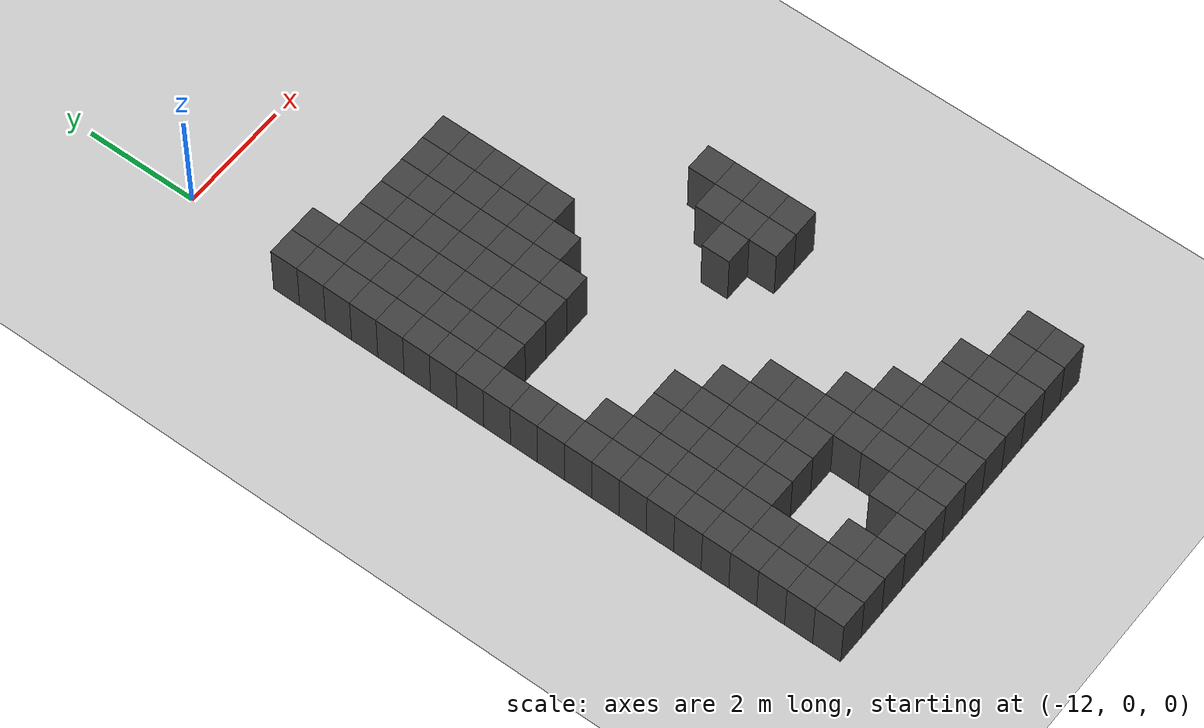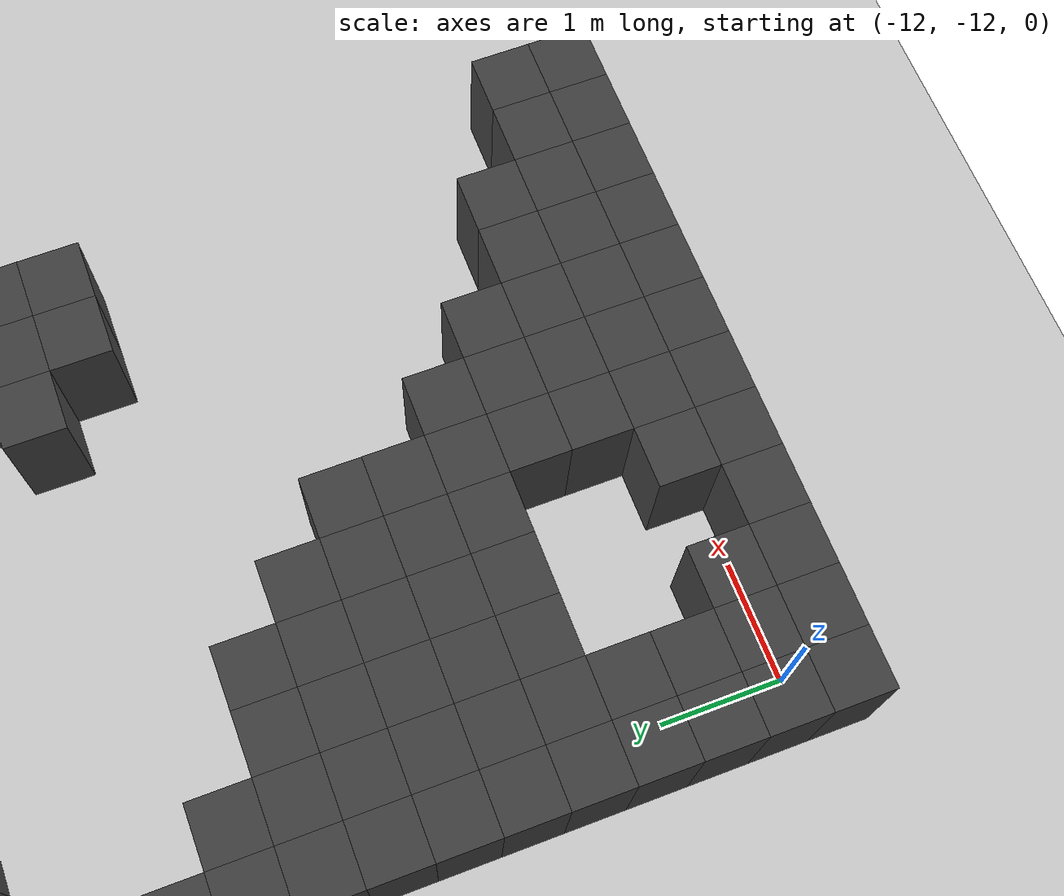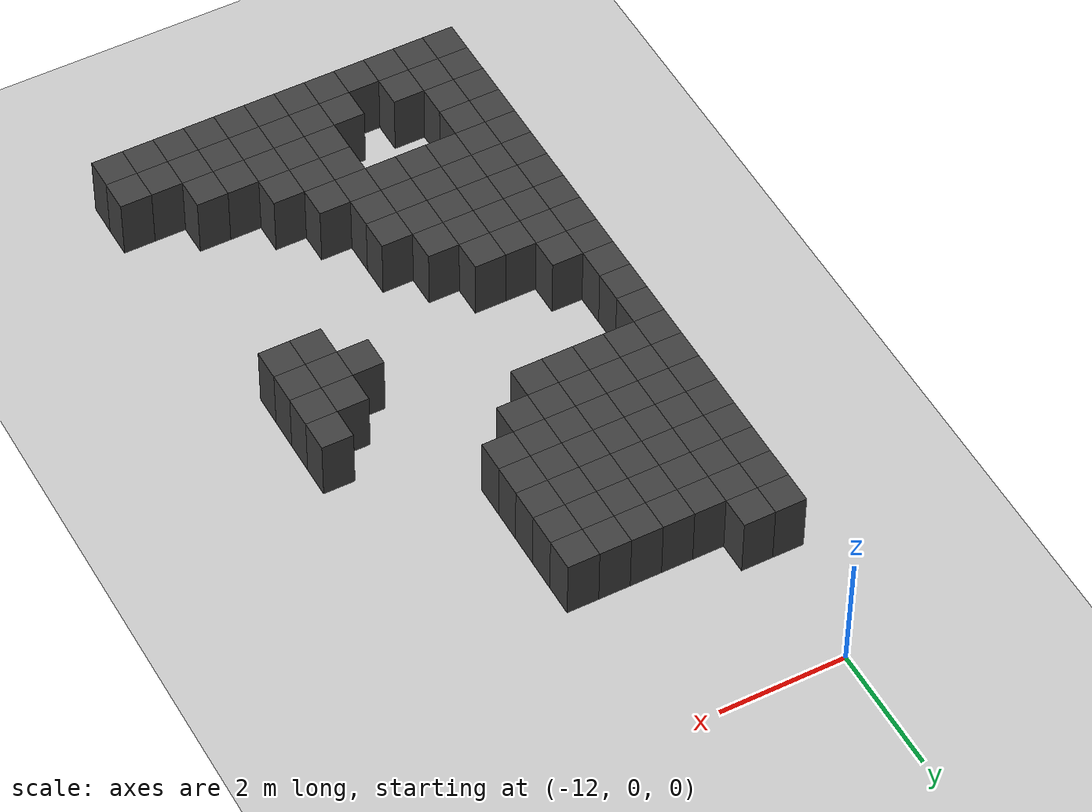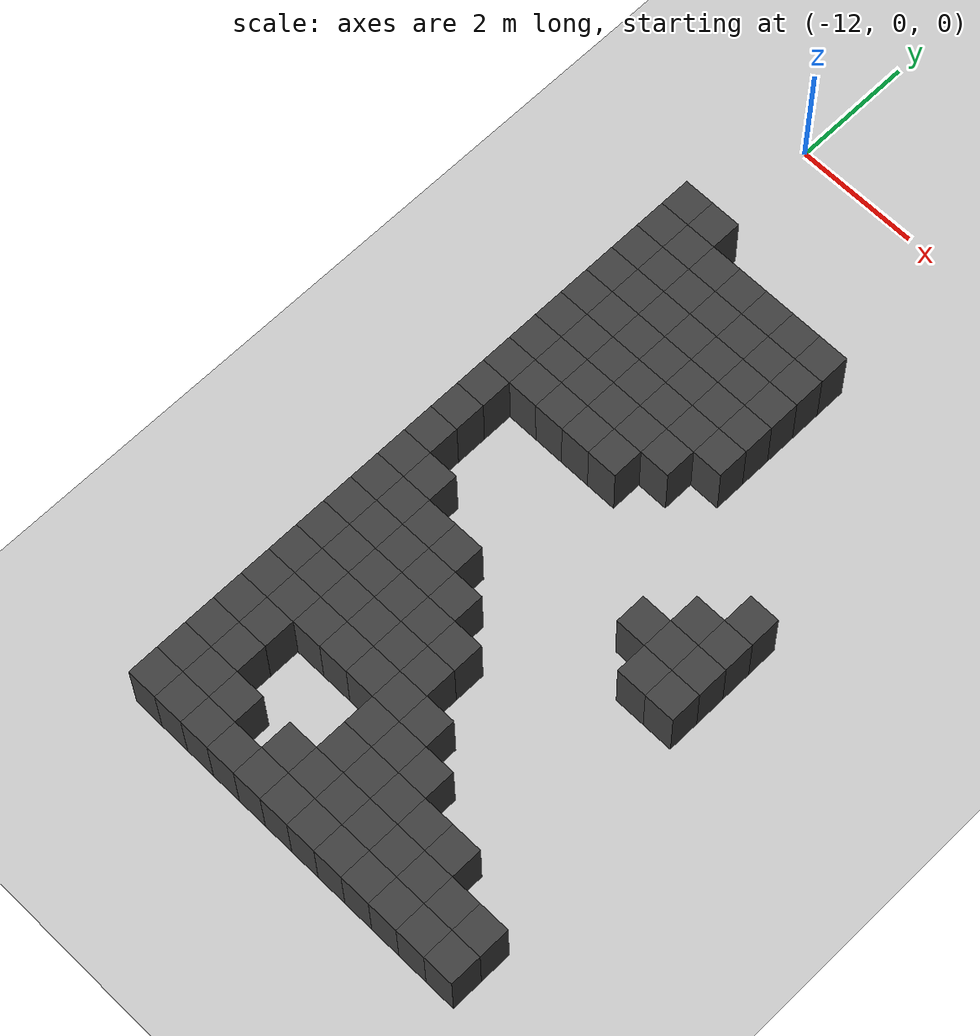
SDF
<sdf version="1.7">
 <world name="map_9687">
  <model name="ground_plane">
   <static>true</static>
   <link name="link">
    <collision name="collision">
     <geometry><plane><normal>0 0 1</normal><size>200 200</size></plane></geometry>
    </collision>
    <visual name="visual">
     <geometry><plane><normal>0 0 1</normal><size>200 200</size></plane></geometry>
     <material><ambient>0.8 0.8 0.8 1</ambient><diffuse>0.8 0.8 0.8 1</diffuse></material>
    </visual>
   </link>
  </model>
  <model name="maze_environment">
   <static>true</static>
   <link name="wall_546">
    <pose>-12.250 -2.250 0.500 0 0 0</pose>
    <collision name="col"><geometry><box><size>0.5 0.5 1.0</size></box></geometry></collision>
    <visual name="vis">
     <geometry><box><size>0.5 0.5 1.0</size></box></geometry>
     <material><ambient>0.15 0.15 0.15 1</ambient><diffuse>0.25 0.25 0.25 1</diffuse></material>
    </visual>
   </link>
   <link name="wall_547">
    <pose>-11.750 -2.250 0.500 0 0 0</pose>
    <collision name="col"><geometry><box><size>0.5 0.5 1.0</size></box></geometry></collision>
    <visual name="vis">
     <geometry><box><size>0.5 0.5 1.0</size></box></geometry>
     <material><ambient>0.15 0.15 0.15 1</ambient><diffuse>0.25 0.25 0.25 1</diffuse></material>
    </visual>
   </link>
   <link name="wall_574">
    <pose>-12.250 -2.750 0.500 0 0 0</pose>
    <collision name="col"><geometry><box><size>0.5 0.5 1.0</size></box></geometry></collision>
    <visual name="vis">
     <geometry><box><size>0.5 0.5 1.0</size></box></geometry>
     <material><ambient>0.15 0.15 0.15 1</ambient><diffuse>0.25 0.25 0.25 1</diffuse></material>
    </visual>
   </link>
   <link name="wall_575">
    <pose>-11.750 -2.750 0.500 0 0 0</pose>
    <collision name="col"><geometry><box><size>0.5 0.5 1.0</size></box></geometry></collision>
    <visual name="vis">
     <geometry><box><size>0.5 0.5 1.0</size></box></geometry>
     <material><ambient>0.15 0.15 0.15 1</ambient><diffuse>0.25 0.25 0.25 1</diffuse></material>
    </visual>
   </link>
   <link name="wall_576">
    <pose>-11.250 -2.750 0.500 0 0 0</pose>
    <collision name="col"><geometry><box><size>0.5 0.5 1.0</size></box></geometry></collision>
    <visual name="vis">
     <geometry><box><size>0.5 0.5 1.0</size></box></geometry>
     <material><ambient>0.15 0.15 0.15 1</ambient><diffuse>0.25 0.25 0.25 1</diffuse></material>
    </visual>
   </link>
   <link name="wall_577">
    <pose>-10.750 -2.750 0.500 0 0 0</pose>
    <collision name="col"><geometry><box><size>0.5 0.5 1.0</size></box></geometry></collision>
    <visual name="vis">
     <geometry><box><size>0.5 0.5 1.0</size></box></geometry>
     <material><ambient>0.15 0.15 0.15 1</ambient><diffuse>0.25 0.25 0.25 1</diffuse></material>
    </visual>
   </link>
   <link name="wall_578">
    <pose>-10.250 -2.750 0.500 0 0 0</pose>
    <collision name="col"><geometry><box><size>0.5 0.5 1.0</size></box></geometry></collision>
    <visual name="vis">
     <geometry><box><size>0.5 0.5 1.0</size></box></geometry>
     <material><ambient>0.15 0.15 0.15 1</ambient><diffuse>0.25 0.25 0.25 1</diffuse></material>
    </visual>
   </link>
   <link name="wall_579">
    <pose>-9.750 -2.750 0.500 0 0 0</pose>
    <collision name="col"><geometry><box><size>0.5 0.5 1.0</size></box></geometry></collision>
    <visual name="vis">
     <geometry><box><size>0.5 0.5 1.0</size></box></geometry>
     <material><ambient>0.15 0.15 0.15 1</ambient><diffuse>0.25 0.25 0.25 1</diffuse></material>
    </visual>
   </link>
   <link name="wall_580">
    <pose>-9.250 -2.750 0.500 0 0 0</pose>
    <collision name="col"><geometry><box><size>0.5 0.5 1.0</size></box></geometry></collision>
    <visual name="vis">
     <geometry><box><size>0.5 0.5 1.0</size></box></geometry>
     <material><ambient>0.15 0.15 0.15 1</ambient><diffuse>0.25 0.25 0.25 1</diffuse></material>
    </visual>
   </link>
   <link name="wall_602">
    <pose>-12.250 -3.250 0.500 0 0 0</pose>
    <collision name="col"><geometry><box><size>0.5 0.5 1.0</size></box></geometry></collision>
    <visual name="vis">
     <geometry><box><size>0.5 0.5 1.0</size></box></geometry>
     <material><ambient>0.15 0.15 0.15 1</ambient><diffuse>0.25 0.25 0.25 1</diffuse></material>
    </visual>
   </link>
   <link name="wall_603">
    <pose>-11.750 -3.250 0.500 0 0 0</pose>
    <collision name="col"><geometry><box><size>0.5 0.5 1.0</size></box></geometry></collision>
    <visual name="vis">
     <geometry><box><size>0.5 0.5 1.0</size></box></geometry>
     <material><ambient>0.15 0.15 0.15 1</ambient><diffuse>0.25 0.25 0.25 1</diffuse></material>
    </visual>
   </link>
   <link name="wall_604">
    <pose>-11.250 -3.250 0.500 0 0 0</pose>
    <collision name="col"><geometry><box><size>0.5 0.5 1.0</size></box></geometry></collision>
    <visual name="vis">
     <geometry><box><size>0.5 0.5 1.0</size></box></geometry>
     <material><ambient>0.15 0.15 0.15 1</ambient><diffuse>0.25 0.25 0.25 1</diffuse></material>
    </visual>
   </link>
   <link name="wall_605">
    <pose>-10.750 -3.250 0.500 0 0 0</pose>
    <collision name="col"><geometry><box><size>0.5 0.5 1.0</size></box></geometry></collision>
    <visual name="vis">
     <geometry><box><size>0.5 0.5 1.0</size></box></geometry>
     <material><ambient>0.15 0.15 0.15 1</ambient><diffuse>0.25 0.25 0.25 1</diffuse></material>
    </visual>
   </link>
   <link name="wall_606">
    <pose>-10.250 -3.250 0.500 0 0 0</pose>
    <collision name="col"><geometry><box><size>0.5 0.5 1.0</size></box></geometry></collision>
    <visual name="vis">
     <geometry><box><size>0.5 0.5 1.0</size></box></geometry>
     <material><ambient>0.15 0.15 0.15 1</ambient><diffuse>0.25 0.25 0.25 1</diffuse></material>
    </visual>
   </link>
   <link name="wall_607">
    <pose>-9.750 -3.250 0.500 0 0 0</pose>
    <collision name="col"><geometry><box><size>0.5 0.5 1.0</size></box></geometry></collision>
    <visual name="vis">
     <geometry><box><size>0.5 0.5 1.0</size></box></geometry>
     <material><ambient>0.15 0.15 0.15 1</ambient><diffuse>0.25 0.25 0.25 1</diffuse></material>
    </visual>
   </link>
   <link name="wall_608">
    <pose>-9.250 -3.250 0.500 0 0 0</pose>
    <collision name="col"><geometry><box><size>0.5 0.5 1.0</size></box></geometry></collision>
    <visual name="vis">
     <geometry><box><size>0.5 0.5 1.0</size></box></geometry>
     <material><ambient>0.15 0.15 0.15 1</ambient><diffuse>0.25 0.25 0.25 1</diffuse></material>
    </visual>
   </link>
   <link name="wall_630">
    <pose>-12.250 -3.750 0.500 0 0 0</pose>
    <collision name="col"><geometry><box><size>0.5 0.5 1.0</size></box></geometry></collision>
    <visual name="vis">
     <geometry><box><size>0.5 0.5 1.0</size></box></geometry>
     <material><ambient>0.15 0.15 0.15 1</ambient><diffuse>0.25 0.25 0.25 1</diffuse></material>
    </visual>
   </link>
   <link name="wall_631">
    <pose>-11.750 -3.750 0.500 0 0 0</pose>
    <collision name="col"><geometry><box><size>0.5 0.5 1.0</size></box></geometry></collision>
    <visual name="vis">
     <geometry><box><size>0.5 0.5 1.0</size></box></geometry>
     <material><ambient>0.15 0.15 0.15 1</ambient><diffuse>0.25 0.25 0.25 1</diffuse></material>
    </visual>
   </link>
   <link name="wall_632">
    <pose>-11.250 -3.750 0.500 0 0 0</pose>
    <collision name="col"><geometry><box><size>0.5 0.5 1.0</size></box></geometry></collision>
    <visual name="vis">
     <geometry><box><size>0.5 0.5 1.0</size></box></geometry>
     <material><ambient>0.15 0.15 0.15 1</ambient><diffuse>0.25 0.25 0.25 1</diffuse></material>
    </visual>
   </link>
   <link name="wall_633">
    <pose>-10.750 -3.750 0.500 0 0 0</pose>
    <collision name="col"><geometry><box><size>0.5 0.5 1.0</size></box></geometry></collision>
    <visual name="vis">
     <geometry><box><size>0.5 0.5 1.0</size></box></geometry>
     <material><ambient>0.15 0.15 0.15 1</ambient><diffuse>0.25 0.25 0.25 1</diffuse></material>
    </visual>
   </link>
   <link name="wall_634">
    <pose>-10.250 -3.750 0.500 0 0 0</pose>
    <collision name="col"><geometry><box><size>0.5 0.5 1.0</size></box></geometry></collision>
    <visual name="vis">
     <geometry><box><size>0.5 0.5 1.0</size></box></geometry>
     <material><ambient>0.15 0.15 0.15 1</ambient><diffuse>0.25 0.25 0.25 1</diffuse></material>
    </visual>
   </link>
   <link name="wall_635">
    <pose>-9.750 -3.750 0.500 0 0 0</pose>
    <collision name="col"><geometry><box><size>0.5 0.5 1.0</size></box></geometry></collision>
    <visual name="vis">
     <geometry><box><size>0.5 0.5 1.0</size></box></geometry>
     <material><ambient>0.15 0.15 0.15 1</ambient><diffuse>0.25 0.25 0.25 1</diffuse></material>
    </visual>
   </link>
   <link name="wall_636">
    <pose>-9.250 -3.750 0.500 0 0 0</pose>
    <collision name="col"><geometry><box><size>0.5 0.5 1.0</size></box></geometry></collision>
    <visual name="vis">
     <geometry><box><size>0.5 0.5 1.0</size></box></geometry>
     <material><ambient>0.15 0.15 0.15 1</ambient><diffuse>0.25 0.25 0.25 1</diffuse></material>
    </visual>
   </link>
   <link name="wall_659">
    <pose>-12.250 -4.250 0.500 0 0 0</pose>
    <collision name="col"><geometry><box><size>0.5 0.5 1.0</size></box></geometry></collision>
    <visual name="vis">
     <geometry><box><size>0.5 0.5 1.0</size></box></geometry>
     <material><ambient>0.15 0.15 0.15 1</ambient><diffuse>0.25 0.25 0.25 1</diffuse></material>
    </visual>
   </link>
   <link name="wall_660">
    <pose>-11.750 -4.250 0.500 0 0 0</pose>
    <collision name="col"><geometry><box><size>0.5 0.5 1.0</size></box></geometry></collision>
    <visual name="vis">
     <geometry><box><size>0.5 0.5 1.0</size></box></geometry>
     <material><ambient>0.15 0.15 0.15 1</ambient><diffuse>0.25 0.25 0.25 1</diffuse></material>
    </visual>
   </link>
   <link name="wall_661">
    <pose>-11.250 -4.250 0.500 0 0 0</pose>
    <collision name="col"><geometry><box><size>0.5 0.5 1.0</size></box></geometry></collision>
    <visual name="vis">
     <geometry><box><size>0.5 0.5 1.0</size></box></geometry>
     <material><ambient>0.15 0.15 0.15 1</ambient><diffuse>0.25 0.25 0.25 1</diffuse></material>
    </visual>
   </link>
   <link name="wall_662">
    <pose>-10.750 -4.250 0.500 0 0 0</pose>
    <collision name="col"><geometry><box><size>0.5 0.5 1.0</size></box></geometry></collision>
    <visual name="vis">
     <geometry><box><size>0.5 0.5 1.0</size></box></geometry>
     <material><ambient>0.15 0.15 0.15 1</ambient><diffuse>0.25 0.25 0.25 1</diffuse></material>
    </visual>
   </link>
   <link name="wall_663">
    <pose>-10.250 -4.250 0.500 0 0 0</pose>
    <collision name="col"><geometry><box><size>0.5 0.5 1.0</size></box></geometry></collision>
    <visual name="vis">
     <geometry><box><size>0.5 0.5 1.0</size></box></geometry>
     <material><ambient>0.15 0.15 0.15 1</ambient><diffuse>0.25 0.25 0.25 1</diffuse></material>
    </visual>
   </link>
   <link name="wall_664">
    <pose>-9.750 -4.250 0.500 0 0 0</pose>
    <collision name="col"><geometry><box><size>0.5 0.5 1.0</size></box></geometry></collision>
    <visual name="vis">
     <geometry><box><size>0.5 0.5 1.0</size></box></geometry>
     <material><ambient>0.15 0.15 0.15 1</ambient><diffuse>0.25 0.25 0.25 1</diffuse></material>
    </visual>
   </link>
   <link name="wall_665">
    <pose>-9.250 -4.250 0.500 0 0 0</pose>
    <collision name="col"><geometry><box><size>0.5 0.5 1.0</size></box></geometry></collision>
    <visual name="vis">
     <geometry><box><size>0.5 0.5 1.0</size></box></geometry>
     <material><ambient>0.15 0.15 0.15 1</ambient><diffuse>0.25 0.25 0.25 1</diffuse></material>
    </visual>
   </link>
   <link name="wall_685">
    <pose>-12.250 -4.750 0.500 0 0 0</pose>
    <collision name="col"><geometry><box><size>0.5 0.5 1.0</size></box></geometry></collision>
    <visual name="vis">
     <geometry><box><size>0.5 0.5 1.0</size></box></geometry>
     <material><ambient>0.15 0.15 0.15 1</ambient><diffuse>0.25 0.25 0.25 1</diffuse></material>
    </visual>
   </link>
   <link name="wall_686">
    <pose>-11.750 -4.750 0.500 0 0 0</pose>
    <collision name="col"><geometry><box><size>0.5 0.5 1.0</size></box></geometry></collision>
    <visual name="vis">
     <geometry><box><size>0.5 0.5 1.0</size></box></geometry>
     <material><ambient>0.15 0.15 0.15 1</ambient><diffuse>0.25 0.25 0.25 1</diffuse></material>
    </visual>
   </link>
   <link name="wall_687">
    <pose>-11.250 -4.750 0.500 0 0 0</pose>
    <collision name="col"><geometry><box><size>0.5 0.5 1.0</size></box></geometry></collision>
    <visual name="vis">
     <geometry><box><size>0.5 0.5 1.0</size></box></geometry>
     <material><ambient>0.15 0.15 0.15 1</ambient><diffuse>0.25 0.25 0.25 1</diffuse></material>
    </visual>
   </link>
   <link name="wall_688">
    <pose>-10.750 -4.750 0.500 0 0 0</pose>
    <collision name="col"><geometry><box><size>0.5 0.5 1.0</size></box></geometry></collision>
    <visual name="vis">
     <geometry><box><size>0.5 0.5 1.0</size></box></geometry>
     <material><ambient>0.15 0.15 0.15 1</ambient><diffuse>0.25 0.25 0.25 1</diffuse></material>
    </visual>
   </link>
   <link name="wall_689">
    <pose>-10.250 -4.750 0.500 0 0 0</pose>
    <collision name="col"><geometry><box><size>0.5 0.5 1.0</size></box></geometry></collision>
    <visual name="vis">
     <geometry><box><size>0.5 0.5 1.0</size></box></geometry>
     <material><ambient>0.15 0.15 0.15 1</ambient><diffuse>0.25 0.25 0.25 1</diffuse></material>
    </visual>
   </link>
   <link name="wall_690">
    <pose>-9.750 -4.750 0.500 0 0 0</pose>
    <collision name="col"><geometry><box><size>0.5 0.5 1.0</size></box></geometry></collision>
    <visual name="vis">
     <geometry><box><size>0.5 0.5 1.0</size></box></geometry>
     <material><ambient>0.15 0.15 0.15 1</ambient><diffuse>0.25 0.25 0.25 1</diffuse></material>
    </visual>
   </link>
   <link name="wall_691">
    <pose>-9.250 -4.750 0.500 0 0 0</pose>
    <collision name="col"><geometry><box><size>0.5 0.5 1.0</size></box></geometry></collision>
    <visual name="vis">
     <geometry><box><size>0.5 0.5 1.0</size></box></geometry>
     <material><ambient>0.15 0.15 0.15 1</ambient><diffuse>0.25 0.25 0.25 1</diffuse></material>
    </visual>
   </link>
   <link name="wall_709">
    <pose>-12.250 -5.250 0.500 0 0 0</pose>
    <collision name="col"><geometry><box><size>0.5 0.5 1.0</size></box></geometry></collision>
    <visual name="vis">
     <geometry><box><size>0.5 0.5 1.0</size></box></geometry>
     <material><ambient>0.15 0.15 0.15 1</ambient><diffuse>0.25 0.25 0.25 1</diffuse></material>
    </visual>
   </link>
   <link name="wall_710">
    <pose>-11.750 -5.250 0.500 0 0 0</pose>
    <collision name="col"><geometry><box><size>0.5 0.5 1.0</size></box></geometry></collision>
    <visual name="vis">
     <geometry><box><size>0.5 0.5 1.0</size></box></geometry>
     <material><ambient>0.15 0.15 0.15 1</ambient><diffuse>0.25 0.25 0.25 1</diffuse></material>
    </visual>
   </link>
   <link name="wall_711">
    <pose>-11.250 -5.250 0.500 0 0 0</pose>
    <collision name="col"><geometry><box><size>0.5 0.5 1.0</size></box></geometry></collision>
    <visual name="vis">
     <geometry><box><size>0.5 0.5 1.0</size></box></geometry>
     <material><ambient>0.15 0.15 0.15 1</ambient><diffuse>0.25 0.25 0.25 1</diffuse></material>
    </visual>
   </link>
   <link name="wall_712">
    <pose>-10.750 -5.250 0.500 0 0 0</pose>
    <collision name="col"><geometry><box><size>0.5 0.5 1.0</size></box></geometry></collision>
    <visual name="vis">
     <geometry><box><size>0.5 0.5 1.0</size></box></geometry>
     <material><ambient>0.15 0.15 0.15 1</ambient><diffuse>0.25 0.25 0.25 1</diffuse></material>
    </visual>
   </link>
   <link name="wall_713">
    <pose>-10.250 -5.250 0.500 0 0 0</pose>
    <collision name="col"><geometry><box><size>0.5 0.5 1.0</size></box></geometry></collision>
    <visual name="vis">
     <geometry><box><size>0.5 0.5 1.0</size></box></geometry>
     <material><ambient>0.15 0.15 0.15 1</ambient><diffuse>0.25 0.25 0.25 1</diffuse></material>
    </visual>
   </link>
   <link name="wall_714">
    <pose>-9.750 -5.250 0.500 0 0 0</pose>
    <collision name="col"><geometry><box><size>0.5 0.5 1.0</size></box></geometry></collision>
    <visual name="vis">
     <geometry><box><size>0.5 0.5 1.0</size></box></geometry>
     <material><ambient>0.15 0.15 0.15 1</ambient><diffuse>0.25 0.25 0.25 1</diffuse></material>
    </visual>
   </link>
   <link name="wall_730">
    <pose>-12.250 -5.750 0.500 0 0 0</pose>
    <collision name="col"><geometry><box><size>0.5 0.5 1.0</size></box></geometry></collision>
    <visual name="vis">
     <geometry><box><size>0.5 0.5 1.0</size></box></geometry>
     <material><ambient>0.15 0.15 0.15 1</ambient><diffuse>0.25 0.25 0.25 1</diffuse></material>
    </visual>
   </link>
   <link name="wall_731">
    <pose>-11.750 -5.750 0.500 0 0 0</pose>
    <collision name="col"><geometry><box><size>0.5 0.5 1.0</size></box></geometry></collision>
    <visual name="vis">
     <geometry><box><size>0.5 0.5 1.0</size></box></geometry>
     <material><ambient>0.15 0.15 0.15 1</ambient><diffuse>0.25 0.25 0.25 1</diffuse></material>
    </visual>
   </link>
   <link name="wall_732">
    <pose>-11.250 -5.750 0.500 0 0 0</pose>
    <collision name="col"><geometry><box><size>0.5 0.5 1.0</size></box></geometry></collision>
    <visual name="vis">
     <geometry><box><size>0.5 0.5 1.0</size></box></geometry>
     <material><ambient>0.15 0.15 0.15 1</ambient><diffuse>0.25 0.25 0.25 1</diffuse></material>
    </visual>
   </link>
   <link name="wall_733">
    <pose>-10.750 -5.750 0.500 0 0 0</pose>
    <collision name="col"><geometry><box><size>0.5 0.5 1.0</size></box></geometry></collision>
    <visual name="vis">
     <geometry><box><size>0.5 0.5 1.0</size></box></geometry>
     <material><ambient>0.15 0.15 0.15 1</ambient><diffuse>0.25 0.25 0.25 1</diffuse></material>
    </visual>
   </link>
   <link name="wall_734">
    <pose>-10.250 -5.750 0.500 0 0 0</pose>
    <collision name="col"><geometry><box><size>0.5 0.5 1.0</size></box></geometry></collision>
    <visual name="vis">
     <geometry><box><size>0.5 0.5 1.0</size></box></geometry>
     <material><ambient>0.15 0.15 0.15 1</ambient><diffuse>0.25 0.25 0.25 1</diffuse></material>
    </visual>
   </link>
   <link name="wall_748">
    <pose>-12.250 -6.250 0.500 0 0 0</pose>
    <collision name="col"><geometry><box><size>0.5 0.5 1.0</size></box></geometry></collision>
    <visual name="vis">
     <geometry><box><size>0.5 0.5 1.0</size></box></geometry>
     <material><ambient>0.15 0.15 0.15 1</ambient><diffuse>0.25 0.25 0.25 1</diffuse></material>
    </visual>
   </link>
   <link name="wall_749">
    <pose>-7.250 -6.250 0.500 0 0 0</pose>
    <collision name="col"><geometry><box><size>0.5 0.5 1.0</size></box></geometry></collision>
    <visual name="vis">
     <geometry><box><size>0.5 0.5 1.0</size></box></geometry>
     <material><ambient>0.15 0.15 0.15 1</ambient><diffuse>0.25 0.25 0.25 1</diffuse></material>
    </visual>
   </link>
   <link name="wall_761">
    <pose>-12.250 -6.750 0.500 0 0 0</pose>
    <collision name="col"><geometry><box><size>0.5 0.5 1.0</size></box></geometry></collision>
    <visual name="vis">
     <geometry><box><size>0.5 0.5 1.0</size></box></geometry>
     <material><ambient>0.15 0.15 0.15 1</ambient><diffuse>0.25 0.25 0.25 1</diffuse></material>
    </visual>
   </link>
   <link name="wall_762">
    <pose>-7.750 -6.750 0.500 0 0 0</pose>
    <collision name="col"><geometry><box><size>0.5 0.5 1.0</size></box></geometry></collision>
    <visual name="vis">
     <geometry><box><size>0.5 0.5 1.0</size></box></geometry>
     <material><ambient>0.15 0.15 0.15 1</ambient><diffuse>0.25 0.25 0.25 1</diffuse></material>
    </visual>
   </link>
   <link name="wall_763">
    <pose>-7.250 -6.750 0.500 0 0 0</pose>
    <collision name="col"><geometry><box><size>0.5 0.5 1.0</size></box></geometry></collision>
    <visual name="vis">
     <geometry><box><size>0.5 0.5 1.0</size></box></geometry>
     <material><ambient>0.15 0.15 0.15 1</ambient><diffuse>0.25 0.25 0.25 1</diffuse></material>
    </visual>
   </link>
   <link name="wall_775">
    <pose>-12.250 -7.250 0.500 0 0 0</pose>
    <collision name="col"><geometry><box><size>0.5 0.5 1.0</size></box></geometry></collision>
    <visual name="vis">
     <geometry><box><size>0.5 0.5 1.0</size></box></geometry>
     <material><ambient>0.15 0.15 0.15 1</ambient><diffuse>0.25 0.25 0.25 1</diffuse></material>
    </visual>
   </link>
   <link name="wall_776">
    <pose>-8.250 -7.250 0.500 0 0 0</pose>
    <collision name="col"><geometry><box><size>0.5 0.5 1.0</size></box></geometry></collision>
    <visual name="vis">
     <geometry><box><size>0.5 0.5 1.0</size></box></geometry>
     <material><ambient>0.15 0.15 0.15 1</ambient><diffuse>0.25 0.25 0.25 1</diffuse></material>
    </visual>
   </link>
   <link name="wall_777">
    <pose>-7.750 -7.250 0.500 0 0 0</pose>
    <collision name="col"><geometry><box><size>0.5 0.5 1.0</size></box></geometry></collision>
    <visual name="vis">
     <geometry><box><size>0.5 0.5 1.0</size></box></geometry>
     <material><ambient>0.15 0.15 0.15 1</ambient><diffuse>0.25 0.25 0.25 1</diffuse></material>
    </visual>
   </link>
   <link name="wall_778">
    <pose>-7.250 -7.250 0.500 0 0 0</pose>
    <collision name="col"><geometry><box><size>0.5 0.5 1.0</size></box></geometry></collision>
    <visual name="vis">
     <geometry><box><size>0.5 0.5 1.0</size></box></geometry>
     <material><ambient>0.15 0.15 0.15 1</ambient><diffuse>0.25 0.25 0.25 1</diffuse></material>
    </visual>
   </link>
   <link name="wall_790">
    <pose>-12.250 -7.750 0.500 0 0 0</pose>
    <collision name="col"><geometry><box><size>0.5 0.5 1.0</size></box></geometry></collision>
    <visual name="vis">
     <geometry><box><size>0.5 0.5 1.0</size></box></geometry>
     <material><ambient>0.15 0.15 0.15 1</ambient><diffuse>0.25 0.25 0.25 1</diffuse></material>
    </visual>
   </link>
   <link name="wall_791">
    <pose>-11.750 -7.750 0.500 0 0 0</pose>
    <collision name="col"><geometry><box><size>0.5 0.5 1.0</size></box></geometry></collision>
    <visual name="vis">
     <geometry><box><size>0.5 0.5 1.0</size></box></geometry>
     <material><ambient>0.15 0.15 0.15 1</ambient><diffuse>0.25 0.25 0.25 1</diffuse></material>
    </visual>
   </link>
   <link name="wall_792">
    <pose>-7.750 -7.750 0.500 0 0 0</pose>
    <collision name="col"><geometry><box><size>0.5 0.5 1.0</size></box></geometry></collision>
    <visual name="vis">
     <geometry><box><size>0.5 0.5 1.0</size></box></geometry>
     <material><ambient>0.15 0.15 0.15 1</ambient><diffuse>0.25 0.25 0.25 1</diffuse></material>
    </visual>
   </link>
   <link name="wall_793">
    <pose>-7.250 -7.750 0.500 0 0 0</pose>
    <collision name="col"><geometry><box><size>0.5 0.5 1.0</size></box></geometry></collision>
    <visual name="vis">
     <geometry><box><size>0.5 0.5 1.0</size></box></geometry>
     <material><ambient>0.15 0.15 0.15 1</ambient><diffuse>0.25 0.25 0.25 1</diffuse></material>
    </visual>
   </link>
   <link name="wall_807">
    <pose>-12.250 -8.250 0.500 0 0 0</pose>
    <collision name="col"><geometry><box><size>0.5 0.5 1.0</size></box></geometry></collision>
    <visual name="vis">
     <geometry><box><size>0.5 0.5 1.0</size></box></geometry>
     <material><ambient>0.15 0.15 0.15 1</ambient><diffuse>0.25 0.25 0.25 1</diffuse></material>
    </visual>
   </link>
   <link name="wall_808">
    <pose>-11.750 -8.250 0.500 0 0 0</pose>
    <collision name="col"><geometry><box><size>0.5 0.5 1.0</size></box></geometry></collision>
    <visual name="vis">
     <geometry><box><size>0.5 0.5 1.0</size></box></geometry>
     <material><ambient>0.15 0.15 0.15 1</ambient><diffuse>0.25 0.25 0.25 1</diffuse></material>
    </visual>
   </link>
   <link name="wall_809">
    <pose>-11.250 -8.250 0.500 0 0 0</pose>
    <collision name="col"><geometry><box><size>0.5 0.5 1.0</size></box></geometry></collision>
    <visual name="vis">
     <geometry><box><size>0.5 0.5 1.0</size></box></geometry>
     <material><ambient>0.15 0.15 0.15 1</ambient><diffuse>0.25 0.25 0.25 1</diffuse></material>
    </visual>
   </link>
   <link name="wall_810">
    <pose>-10.750 -8.250 0.500 0 0 0</pose>
    <collision name="col"><geometry><box><size>0.5 0.5 1.0</size></box></geometry></collision>
    <visual name="vis">
     <geometry><box><size>0.5 0.5 1.0</size></box></geometry>
     <material><ambient>0.15 0.15 0.15 1</ambient><diffuse>0.25 0.25 0.25 1</diffuse></material>
    </visual>
   </link>
   <link name="wall_826">
    <pose>-12.250 -8.750 0.500 0 0 0</pose>
    <collision name="col"><geometry><box><size>0.5 0.5 1.0</size></box></geometry></collision>
    <visual name="vis">
     <geometry><box><size>0.5 0.5 1.0</size></box></geometry>
     <material><ambient>0.15 0.15 0.15 1</ambient><diffuse>0.25 0.25 0.25 1</diffuse></material>
    </visual>
   </link>
   <link name="wall_827">
    <pose>-11.750 -8.750 0.500 0 0 0</pose>
    <collision name="col"><geometry><box><size>0.5 0.5 1.0</size></box></geometry></collision>
    <visual name="vis">
     <geometry><box><size>0.5 0.5 1.0</size></box></geometry>
     <material><ambient>0.15 0.15 0.15 1</ambient><diffuse>0.25 0.25 0.25 1</diffuse></material>
    </visual>
   </link>
   <link name="wall_828">
    <pose>-11.250 -8.750 0.500 0 0 0</pose>
    <collision name="col"><geometry><box><size>0.5 0.5 1.0</size></box></geometry></collision>
    <visual name="vis">
     <geometry><box><size>0.5 0.5 1.0</size></box></geometry>
     <material><ambient>0.15 0.15 0.15 1</ambient><diffuse>0.25 0.25 0.25 1</diffuse></material>
    </visual>
   </link>
   <link name="wall_829">
    <pose>-10.750 -8.750 0.500 0 0 0</pose>
    <collision name="col"><geometry><box><size>0.5 0.5 1.0</size></box></geometry></collision>
    <visual name="vis">
     <geometry><box><size>0.5 0.5 1.0</size></box></geometry>
     <material><ambient>0.15 0.15 0.15 1</ambient><diffuse>0.25 0.25 0.25 1</diffuse></material>
    </visual>
   </link>
   <link name="wall_830">
    <pose>-10.250 -8.750 0.500 0 0 0</pose>
    <collision name="col"><geometry><box><size>0.5 0.5 1.0</size></box></geometry></collision>
    <visual name="vis">
     <geometry><box><size>0.5 0.5 1.0</size></box></geometry>
     <material><ambient>0.15 0.15 0.15 1</ambient><diffuse>0.25 0.25 0.25 1</diffuse></material>
    </visual>
   </link>
   <link name="wall_844">
    <pose>-12.250 -9.250 0.500 0 0 0</pose>
    <collision name="col"><geometry><box><size>0.5 0.5 1.0</size></box></geometry></collision>
    <visual name="vis">
     <geometry><box><size>0.5 0.5 1.0</size></box></geometry>
     <material><ambient>0.15 0.15 0.15 1</ambient><diffuse>0.25 0.25 0.25 1</diffuse></material>
    </visual>
   </link>
   <link name="wall_845">
    <pose>-11.750 -9.250 0.500 0 0 0</pose>
    <collision name="col"><geometry><box><size>0.5 0.5 1.0</size></box></geometry></collision>
    <visual name="vis">
     <geometry><box><size>0.5 0.5 1.0</size></box></geometry>
     <material><ambient>0.15 0.15 0.15 1</ambient><diffuse>0.25 0.25 0.25 1</diffuse></material>
    </visual>
   </link>
   <link name="wall_846">
    <pose>-11.250 -9.250 0.500 0 0 0</pose>
    <collision name="col"><geometry><box><size>0.5 0.5 1.0</size></box></geometry></collision>
    <visual name="vis">
     <geometry><box><size>0.5 0.5 1.0</size></box></geometry>
     <material><ambient>0.15 0.15 0.15 1</ambient><diffuse>0.25 0.25 0.25 1</diffuse></material>
    </visual>
   </link>
   <link name="wall_847">
    <pose>-10.750 -9.250 0.500 0 0 0</pose>
    <collision name="col"><geometry><box><size>0.5 0.5 1.0</size></box></geometry></collision>
    <visual name="vis">
     <geometry><box><size>0.5 0.5 1.0</size></box></geometry>
     <material><ambient>0.15 0.15 0.15 1</ambient><diffuse>0.25 0.25 0.25 1</diffuse></material>
    </visual>
   </link>
   <link name="wall_848">
    <pose>-10.250 -9.250 0.500 0 0 0</pose>
    <collision name="col"><geometry><box><size>0.5 0.5 1.0</size></box></geometry></collision>
    <visual name="vis">
     <geometry><box><size>0.5 0.5 1.0</size></box></geometry>
     <material><ambient>0.15 0.15 0.15 1</ambient><diffuse>0.25 0.25 0.25 1</diffuse></material>
    </visual>
   </link>
   <link name="wall_849">
    <pose>-9.750 -9.250 0.500 0 0 0</pose>
    <collision name="col"><geometry><box><size>0.5 0.5 1.0</size></box></geometry></collision>
    <visual name="vis">
     <geometry><box><size>0.5 0.5 1.0</size></box></geometry>
     <material><ambient>0.15 0.15 0.15 1</ambient><diffuse>0.25 0.25 0.25 1</diffuse></material>
    </visual>
   </link>
   <link name="wall_857">
    <pose>-12.250 -9.750 0.500 0 0 0</pose>
    <collision name="col"><geometry><box><size>0.5 0.5 1.0</size></box></geometry></collision>
    <visual name="vis">
     <geometry><box><size>0.5 0.5 1.0</size></box></geometry>
     <material><ambient>0.15 0.15 0.15 1</ambient><diffuse>0.25 0.25 0.25 1</diffuse></material>
    </visual>
   </link>
   <link name="wall_858">
    <pose>-11.750 -9.750 0.500 0 0 0</pose>
    <collision name="col"><geometry><box><size>0.5 0.5 1.0</size></box></geometry></collision>
    <visual name="vis">
     <geometry><box><size>0.5 0.5 1.0</size></box></geometry>
     <material><ambient>0.15 0.15 0.15 1</ambient><diffuse>0.25 0.25 0.25 1</diffuse></material>
    </visual>
   </link>
   <link name="wall_859">
    <pose>-11.250 -9.750 0.500 0 0 0</pose>
    <collision name="col"><geometry><box><size>0.5 0.5 1.0</size></box></geometry></collision>
    <visual name="vis">
     <geometry><box><size>0.5 0.5 1.0</size></box></geometry>
     <material><ambient>0.15 0.15 0.15 1</ambient><diffuse>0.25 0.25 0.25 1</diffuse></material>
    </visual>
   </link>
   <link name="wall_860">
    <pose>-10.750 -9.750 0.500 0 0 0</pose>
    <collision name="col"><geometry><box><size>0.5 0.5 1.0</size></box></geometry></collision>
    <visual name="vis">
     <geometry><box><size>0.5 0.5 1.0</size></box></geometry>
     <material><ambient>0.15 0.15 0.15 1</ambient><diffuse>0.25 0.25 0.25 1</diffuse></material>
    </visual>
   </link>
   <link name="wall_861">
    <pose>-10.250 -9.750 0.500 0 0 0</pose>
    <collision name="col"><geometry><box><size>0.5 0.5 1.0</size></box></geometry></collision>
    <visual name="vis">
     <geometry><box><size>0.5 0.5 1.0</size></box></geometry>
     <material><ambient>0.15 0.15 0.15 1</ambient><diffuse>0.25 0.25 0.25 1</diffuse></material>
    </visual>
   </link>
   <link name="wall_862">
    <pose>-9.750 -9.750 0.500 0 0 0</pose>
    <collision name="col"><geometry><box><size>0.5 0.5 1.0</size></box></geometry></collision>
    <visual name="vis">
     <geometry><box><size>0.5 0.5 1.0</size></box></geometry>
     <material><ambient>0.15 0.15 0.15 1</ambient><diffuse>0.25 0.25 0.25 1</diffuse></material>
    </visual>
   </link>
   <link name="wall_868">
    <pose>-12.250 -10.250 0.500 0 0 0</pose>
    <collision name="col"><geometry><box><size>0.5 0.5 1.0</size></box></geometry></collision>
    <visual name="vis">
     <geometry><box><size>0.5 0.5 1.0</size></box></geometry>
     <material><ambient>0.15 0.15 0.15 1</ambient><diffuse>0.25 0.25 0.25 1</diffuse></material>
    </visual>
   </link>
   <link name="wall_869">
    <pose>-11.750 -10.250 0.500 0 0 0</pose>
    <collision name="col"><geometry><box><size>0.5 0.5 1.0</size></box></geometry></collision>
    <visual name="vis">
     <geometry><box><size>0.5 0.5 1.0</size></box></geometry>
     <material><ambient>0.15 0.15 0.15 1</ambient><diffuse>0.25 0.25 0.25 1</diffuse></material>
    </visual>
   </link>
   <link name="wall_870">
    <pose>-11.250 -10.250 0.500 0 0 0</pose>
    <collision name="col"><geometry><box><size>0.5 0.5 1.0</size></box></geometry></collision>
    <visual name="vis">
     <geometry><box><size>0.5 0.5 1.0</size></box></geometry>
     <material><ambient>0.15 0.15 0.15 1</ambient><diffuse>0.25 0.25 0.25 1</diffuse></material>
    </visual>
   </link>
   <link name="wall_871">
    <pose>-10.750 -10.250 0.500 0 0 0</pose>
    <collision name="col"><geometry><box><size>0.5 0.5 1.0</size></box></geometry></collision>
    <visual name="vis">
     <geometry><box><size>0.5 0.5 1.0</size></box></geometry>
     <material><ambient>0.15 0.15 0.15 1</ambient><diffuse>0.25 0.25 0.25 1</diffuse></material>
    </visual>
   </link>
   <link name="wall_872">
    <pose>-10.250 -10.250 0.500 0 0 0</pose>
    <collision name="col"><geometry><box><size>0.5 0.5 1.0</size></box></geometry></collision>
    <visual name="vis">
     <geometry><box><size>0.5 0.5 1.0</size></box></geometry>
     <material><ambient>0.15 0.15 0.15 1</ambient><diffuse>0.25 0.25 0.25 1</diffuse></material>
    </visual>
   </link>
   <link name="wall_873">
    <pose>-9.750 -10.250 0.500 0 0 0</pose>
    <collision name="col"><geometry><box><size>0.5 0.5 1.0</size></box></geometry></collision>
    <visual name="vis">
     <geometry><box><size>0.5 0.5 1.0</size></box></geometry>
     <material><ambient>0.15 0.15 0.15 1</ambient><diffuse>0.25 0.25 0.25 1</diffuse></material>
    </visual>
   </link>
   <link name="wall_874">
    <pose>-9.250 -10.250 0.500 0 0 0</pose>
    <collision name="col"><geometry><box><size>0.5 0.5 1.0</size></box></geometry></collision>
    <visual name="vis">
     <geometry><box><size>0.5 0.5 1.0</size></box></geometry>
     <material><ambient>0.15 0.15 0.15 1</ambient><diffuse>0.25 0.25 0.25 1</diffuse></material>
    </visual>
   </link>
   <link name="wall_882">
    <pose>-12.250 -10.750 0.500 0 0 0</pose>
    <collision name="col"><geometry><box><size>0.5 0.5 1.0</size></box></geometry></collision>
    <visual name="vis">
     <geometry><box><size>0.5 0.5 1.0</size></box></geometry>
     <material><ambient>0.15 0.15 0.15 1</ambient><diffuse>0.25 0.25 0.25 1</diffuse></material>
    </visual>
   </link>
   <link name="wall_883">
    <pose>-11.750 -10.750 0.500 0 0 0</pose>
    <collision name="col"><geometry><box><size>0.5 0.5 1.0</size></box></geometry></collision>
    <visual name="vis">
     <geometry><box><size>0.5 0.5 1.0</size></box></geometry>
     <material><ambient>0.15 0.15 0.15 1</ambient><diffuse>0.25 0.25 0.25 1</diffuse></material>
    </visual>
   </link>
   <link name="wall_884">
    <pose>-9.750 -10.750 0.500 0 0 0</pose>
    <collision name="col"><geometry><box><size>0.5 0.5 1.0</size></box></geometry></collision>
    <visual name="vis">
     <geometry><box><size>0.5 0.5 1.0</size></box></geometry>
     <material><ambient>0.15 0.15 0.15 1</ambient><diffuse>0.25 0.25 0.25 1</diffuse></material>
    </visual>
   </link>
   <link name="wall_885">
    <pose>-9.250 -10.750 0.500 0 0 0</pose>
    <collision name="col"><geometry><box><size>0.5 0.5 1.0</size></box></geometry></collision>
    <visual name="vis">
     <geometry><box><size>0.5 0.5 1.0</size></box></geometry>
     <material><ambient>0.15 0.15 0.15 1</ambient><diffuse>0.25 0.25 0.25 1</diffuse></material>
    </visual>
   </link>
   <link name="wall_886">
    <pose>-8.750 -10.750 0.500 0 0 0</pose>
    <collision name="col"><geometry><box><size>0.5 0.5 1.0</size></box></geometry></collision>
    <visual name="vis">
     <geometry><box><size>0.5 0.5 1.0</size></box></geometry>
     <material><ambient>0.15 0.15 0.15 1</ambient><diffuse>0.25 0.25 0.25 1</diffuse></material>
    </visual>
   </link>
   <link name="wall_896">
    <pose>-12.250 -11.250 0.500 0 0 0</pose>
    <collision name="col"><geometry><box><size>0.5 0.5 1.0</size></box></geometry></collision>
    <visual name="vis">
     <geometry><box><size>0.5 0.5 1.0</size></box></geometry>
     <material><ambient>0.15 0.15 0.15 1</ambient><diffuse>0.25 0.25 0.25 1</diffuse></material>
    </visual>
   </link>
   <link name="wall_897">
    <pose>-11.750 -11.250 0.500 0 0 0</pose>
    <collision name="col"><geometry><box><size>0.5 0.5 1.0</size></box></geometry></collision>
    <visual name="vis">
     <geometry><box><size>0.5 0.5 1.0</size></box></geometry>
     <material><ambient>0.15 0.15 0.15 1</ambient><diffuse>0.25 0.25 0.25 1</diffuse></material>
    </visual>
   </link>
   <link name="wall_898">
    <pose>-9.750 -11.250 0.500 0 0 0</pose>
    <collision name="col"><geometry><box><size>0.5 0.5 1.0</size></box></geometry></collision>
    <visual name="vis">
     <geometry><box><size>0.5 0.5 1.0</size></box></geometry>
     <material><ambient>0.15 0.15 0.15 1</ambient><diffuse>0.25 0.25 0.25 1</diffuse></material>
    </visual>
   </link>
   <link name="wall_899">
    <pose>-9.250 -11.250 0.500 0 0 0</pose>
    <collision name="col"><geometry><box><size>0.5 0.5 1.0</size></box></geometry></collision>
    <visual name="vis">
     <geometry><box><size>0.5 0.5 1.0</size></box></geometry>
     <material><ambient>0.15 0.15 0.15 1</ambient><diffuse>0.25 0.25 0.25 1</diffuse></material>
    </visual>
   </link>
   <link name="wall_900">
    <pose>-8.750 -11.250 0.500 0 0 0</pose>
    <collision name="col"><geometry><box><size>0.5 0.5 1.0</size></box></geometry></collision>
    <visual name="vis">
     <geometry><box><size>0.5 0.5 1.0</size></box></geometry>
     <material><ambient>0.15 0.15 0.15 1</ambient><diffuse>0.25 0.25 0.25 1</diffuse></material>
    </visual>
   </link>
   <link name="wall_901">
    <pose>-8.250 -11.250 0.500 0 0 0</pose>
    <collision name="col"><geometry><box><size>0.5 0.5 1.0</size></box></geometry></collision>
    <visual name="vis">
     <geometry><box><size>0.5 0.5 1.0</size></box></geometry>
     <material><ambient>0.15 0.15 0.15 1</ambient><diffuse>0.25 0.25 0.25 1</diffuse></material>
    </visual>
   </link>
   <link name="wall_902">
    <pose>-7.750 -11.250 0.500 0 0 0</pose>
    <collision name="col"><geometry><box><size>0.5 0.5 1.0</size></box></geometry></collision>
    <visual name="vis">
     <geometry><box><size>0.5 0.5 1.0</size></box></geometry>
     <material><ambient>0.15 0.15 0.15 1</ambient><diffuse>0.25 0.25 0.25 1</diffuse></material>
    </visual>
   </link>
   <link name="wall_915">
    <pose>-12.250 -11.750 0.500 0 0 0</pose>
    <collision name="col"><geometry><box><size>0.5 0.5 1.0</size></box></geometry></collision>
    <visual name="vis">
     <geometry><box><size>0.5 0.5 1.0</size></box></geometry>
     <material><ambient>0.15 0.15 0.15 1</ambient><diffuse>0.25 0.25 0.25 1</diffuse></material>
    </visual>
   </link>
   <link name="wall_916">
    <pose>-11.750 -11.750 0.500 0 0 0</pose>
    <collision name="col"><geometry><box><size>0.5 0.5 1.0</size></box></geometry></collision>
    <visual name="vis">
     <geometry><box><size>0.5 0.5 1.0</size></box></geometry>
     <material><ambient>0.15 0.15 0.15 1</ambient><diffuse>0.25 0.25 0.25 1</diffuse></material>
    </visual>
   </link>
   <link name="wall_917">
    <pose>-11.250 -11.750 0.500 0 0 0</pose>
    <collision name="col"><geometry><box><size>0.5 0.5 1.0</size></box></geometry></collision>
    <visual name="vis">
     <geometry><box><size>0.5 0.5 1.0</size></box></geometry>
     <material><ambient>0.15 0.15 0.15 1</ambient><diffuse>0.25 0.25 0.25 1</diffuse></material>
    </visual>
   </link>
   <link name="wall_918">
    <pose>-10.250 -11.750 0.500 0 0 0</pose>
    <collision name="col"><geometry><box><size>0.5 0.5 1.0</size></box></geometry></collision>
    <visual name="vis">
     <geometry><box><size>0.5 0.5 1.0</size></box></geometry>
     <material><ambient>0.15 0.15 0.15 1</ambient><diffuse>0.25 0.25 0.25 1</diffuse></material>
    </visual>
   </link>
   <link name="wall_919">
    <pose>-9.750 -11.750 0.500 0 0 0</pose>
    <collision name="col"><geometry><box><size>0.5 0.5 1.0</size></box></geometry></collision>
    <visual name="vis">
     <geometry><box><size>0.5 0.5 1.0</size></box></geometry>
     <material><ambient>0.15 0.15 0.15 1</ambient><diffuse>0.25 0.25 0.25 1</diffuse></material>
    </visual>
   </link>
   <link name="wall_920">
    <pose>-9.250 -11.750 0.500 0 0 0</pose>
    <collision name="col"><geometry><box><size>0.5 0.5 1.0</size></box></geometry></collision>
    <visual name="vis">
     <geometry><box><size>0.5 0.5 1.0</size></box></geometry>
     <material><ambient>0.15 0.15 0.15 1</ambient><diffuse>0.25 0.25 0.25 1</diffuse></material>
    </visual>
   </link>
   <link name="wall_921">
    <pose>-8.750 -11.750 0.500 0 0 0</pose>
    <collision name="col"><geometry><box><size>0.5 0.5 1.0</size></box></geometry></collision>
    <visual name="vis">
     <geometry><box><size>0.5 0.5 1.0</size></box></geometry>
     <material><ambient>0.15 0.15 0.15 1</ambient><diffuse>0.25 0.25 0.25 1</diffuse></material>
    </visual>
   </link>
   <link name="wall_922">
    <pose>-8.250 -11.750 0.500 0 0 0</pose>
    <collision name="col"><geometry><box><size>0.5 0.5 1.0</size></box></geometry></collision>
    <visual name="vis">
     <geometry><box><size>0.5 0.5 1.0</size></box></geometry>
     <material><ambient>0.15 0.15 0.15 1</ambient><diffuse>0.25 0.25 0.25 1</diffuse></material>
    </visual>
   </link>
   <link name="wall_923">
    <pose>-7.750 -11.750 0.500 0 0 0</pose>
    <collision name="col"><geometry><box><size>0.5 0.5 1.0</size></box></geometry></collision>
    <visual name="vis">
     <geometry><box><size>0.5 0.5 1.0</size></box></geometry>
     <material><ambient>0.15 0.15 0.15 1</ambient><diffuse>0.25 0.25 0.25 1</diffuse></material>
    </visual>
   </link>
   <link name="wall_924">
    <pose>-7.250 -11.750 0.500 0 0 0</pose>
    <collision name="col"><geometry><box><size>0.5 0.5 1.0</size></box></geometry></collision>
    <visual name="vis">
     <geometry><box><size>0.5 0.5 1.0</size></box></geometry>
     <material><ambient>0.15 0.15 0.15 1</ambient><diffuse>0.25 0.25 0.25 1</diffuse></material>
    </visual>
   </link>
   <link name="wall_925">
    <pose>-6.750 -11.750 0.500 0 0 0</pose>
    <collision name="col"><geometry><box><size>0.5 0.5 1.0</size></box></geometry></collision>
    <visual name="vis">
     <geometry><box><size>0.5 0.5 1.0</size></box></geometry>
     <material><ambient>0.15 0.15 0.15 1</ambient><diffuse>0.25 0.25 0.25 1</diffuse></material>
    </visual>
   </link>
   <link name="wall_947">
    <pose>-12.250 -12.250 0.500 0 0 0</pose>
    <collision name="col"><geometry><box><size>0.5 0.5 1.0</size></box></geometry></collision>
    <visual name="vis">
     <geometry><box><size>0.5 0.5 1.0</size></box></geometry>
     <material><ambient>0.15 0.15 0.15 1</ambient><diffuse>0.25 0.25 0.25 1</diffuse></material>
    </visual>
   </link>
   <link name="wall_948">
    <pose>-11.750 -12.250 0.500 0 0 0</pose>
    <collision name="col"><geometry><box><size>0.5 0.5 1.0</size></box></geometry></collision>
    <visual name="vis">
     <geometry><box><size>0.5 0.5 1.0</size></box></geometry>
     <material><ambient>0.15 0.15 0.15 1</ambient><diffuse>0.25 0.25 0.25 1</diffuse></material>
    </visual>
   </link>
   <link name="wall_949">
    <pose>-11.250 -12.250 0.500 0 0 0</pose>
    <collision name="col"><geometry><box><size>0.5 0.5 1.0</size></box></geometry></collision>
    <visual name="vis">
     <geometry><box><size>0.5 0.5 1.0</size></box></geometry>
     <material><ambient>0.15 0.15 0.15 1</ambient><diffuse>0.25 0.25 0.25 1</diffuse></material>
    </visual>
   </link>
   <link name="wall_950">
    <pose>-10.750 -12.250 0.500 0 0 0</pose>
    <collision name="col"><geometry><box><size>0.5 0.5 1.0</size></box></geometry></collision>
    <visual name="vis">
     <geometry><box><size>0.5 0.5 1.0</size></box></geometry>
     <material><ambient>0.15 0.15 0.15 1</ambient><diffuse>0.25 0.25 0.25 1</diffuse></material>
    </visual>
   </link>
   <link name="wall_951">
    <pose>-10.250 -12.250 0.500 0 0 0</pose>
    <collision name="col"><geometry><box><size>0.5 0.5 1.0</size></box></geometry></collision>
    <visual name="vis">
     <geometry><box><size>0.5 0.5 1.0</size></box></geometry>
     <material><ambient>0.15 0.15 0.15 1</ambient><diffuse>0.25 0.25 0.25 1</diffuse></material>
    </visual>
   </link>
   <link name="wall_952">
    <pose>-9.750 -12.250 0.500 0 0 0</pose>
    <collision name="col"><geometry><box><size>0.5 0.5 1.0</size></box></geometry></collision>
    <visual name="vis">
     <geometry><box><size>0.5 0.5 1.0</size></box></geometry>
     <material><ambient>0.15 0.15 0.15 1</ambient><diffuse>0.25 0.25 0.25 1</diffuse></material>
    </visual>
   </link>
   <link name="wall_953">
    <pose>-9.250 -12.250 0.500 0 0 0</pose>
    <collision name="col"><geometry><box><size>0.5 0.5 1.0</size></box></geometry></collision>
    <visual name="vis">
     <geometry><box><size>0.5 0.5 1.0</size></box></geometry>
     <material><ambient>0.15 0.15 0.15 1</ambient><diffuse>0.25 0.25 0.25 1</diffuse></material>
    </visual>
   </link>
   <link name="wall_954">
    <pose>-8.750 -12.250 0.500 0 0 0</pose>
    <collision name="col"><geometry><box><size>0.5 0.5 1.0</size></box></geometry></collision>
    <visual name="vis">
     <geometry><box><size>0.5 0.5 1.0</size></box></geometry>
     <material><ambient>0.15 0.15 0.15 1</ambient><diffuse>0.25 0.25 0.25 1</diffuse></material>
    </visual>
   </link>
   <link name="wall_955">
    <pose>-8.250 -12.250 0.500 0 0 0</pose>
    <collision name="col"><geometry><box><size>0.5 0.5 1.0</size></box></geometry></collision>
    <visual name="vis">
     <geometry><box><size>0.5 0.5 1.0</size></box></geometry>
     <material><ambient>0.15 0.15 0.15 1</ambient><diffuse>0.25 0.25 0.25 1</diffuse></material>
    </visual>
   </link>
   <link name="wall_956">
    <pose>-7.750 -12.250 0.500 0 0 0</pose>
    <collision name="col"><geometry><box><size>0.5 0.5 1.0</size></box></geometry></collision>
    <visual name="vis">
     <geometry><box><size>0.5 0.5 1.0</size></box></geometry>
     <material><ambient>0.15 0.15 0.15 1</ambient><diffuse>0.25 0.25 0.25 1</diffuse></material>
    </visual>
   </link>
   <link name="wall_957">
    <pose>-7.250 -12.250 0.500 0 0 0</pose>
    <collision name="col"><geometry><box><size>0.5 0.5 1.0</size></box></geometry></collision>
    <visual name="vis">
     <geometry><box><size>0.5 0.5 1.0</size></box></geometry>
     <material><ambient>0.15 0.15 0.15 1</ambient><diffuse>0.25 0.25 0.25 1</diffuse></material>
    </visual>
   </link>
   <link name="wall_958">
    <pose>-6.750 -12.250 0.500 0 0 0</pose>
    <collision name="col"><geometry><box><size>0.5 0.5 1.0</size></box></geometry></collision>
    <visual name="vis">
     <geometry><box><size>0.5 0.5 1.0</size></box></geometry>
     <material><ambient>0.15 0.15 0.15 1</ambient><diffuse>0.25 0.25 0.25 1</diffuse></material>
    </visual>
   </link>
  </model>
 </world>
</sdf>
